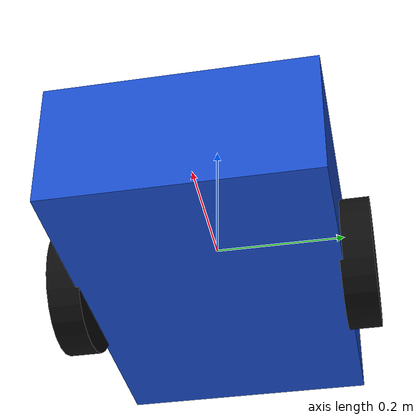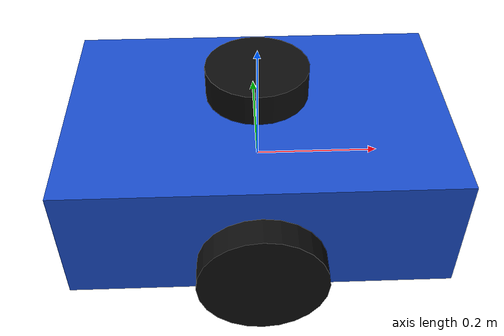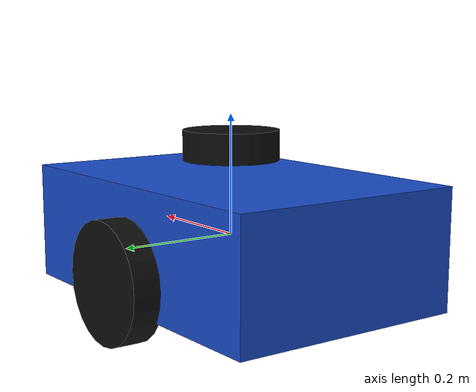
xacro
<?xml version="1.0"?>

<robot xmlns:xacro="http://www.ros.org/wiki/xacro"
       name="amr_robot">

  <!-- Robot dimensions -->

  <xacro:property name="base_length" value="0.6"/>
  <xacro:property name="base_width" value="0.4"/>
  <xacro:property name="base_height" value="0.2"/>

  <xacro:property name="wheel_radius" value="0.1"/>
  <xacro:property name="wheel_width" value="0.05"/>

  <xacro:property name="wheel_y" value="0.22"/>
  <xacro:property name="wheel_z" value="-0.05"/>

  <!-- Base -->

  <link name="base_link">

    <visual>
      <geometry>
        <box size="${base_length} ${base_width} ${base_height}"/>
      </geometry>

      <material name="blue">
        <color rgba="0.1 0.3 0.8 1.0"/>
      </material>
    </visual>

    <collision>
      <geometry>
        <box size="${base_length} ${base_width} ${base_height}"/>
      </geometry>
    </collision>

    <inertial>
      <mass value="10.0"/>
      <origin xyz="0 0 0"/>
      <inertia
        ixx="0.5"
        ixy="0.0"
        ixz="0.0"
        iyy="0.5"
        iyz="0.0"
        izz="0.5"/>
    </inertial>

  </link>

  <!-- Left wheel -->

  <link name="left_wheel">

    <visual>
      <geometry>
        <cylinder
          radius="${wheel_radius}"
          length="${wheel_width}"/>
      </geometry>

      <material name="black">
        <color rgba="0.05 0.05 0.05 1.0"/>
      </material>
    </visual>

    <collision>
      <geometry>
        <cylinder
          radius="${wheel_radius}"
          length="${wheel_width}"/>
      </geometry>
    </collision>

    <inertial>
      <mass value="1.0"/>
      <origin xyz="0 0 0"/>
      <inertia
        ixx="0.01"
        ixy="0.0"
        ixz="0.0"
        iyy="0.01"
        iyz="0.0"
        izz="0.01"/>
    </inertial>

  </link>

  <!-- Right wheel -->

  <link name="right_wheel">

    <visual>
      <geometry>
        <cylinder
          radius="${wheel_radius}"
          length="${wheel_width}"/>
      </geometry>

      <material name="black">
        <color rgba="0.05 0.05 0.05 1.0"/>
      </material>
    </visual>

    <collision>
      <geometry>
        <cylinder
          radius="${wheel_radius}"
          length="${wheel_width}"/>
      </geometry>
    </collision>

    <inertial>
      <mass value="1.0"/>
      <origin xyz="0 0 0"/>
      <inertia
        ixx="0.01"
        ixy="0.0"
        ixz="0.0"
        iyy="0.01"
        iyz="0.0"
        izz="0.01"/>
    </inertial>

  </link>

  <!-- Left wheel joint -->

  <joint name="left_wheel_joint"
         type="continuous">

    <parent link="base_link"/>
    <child link="left_wheel"/>

    <origin
      xyz="0 ${wheel_y} ${wheel_z}"
      rpy="1.5708 0 0"/>

    <axis xyz="0 0 1"/>

  </joint>

  <!-- Right wheel joint -->

  <joint name="right_wheel_joint"
         type="continuous">

    <parent link="base_link"/>
    <child link="right_wheel"/>

    <origin
      xyz="0 -${wheel_y} ${wheel_z}"
      rpy="1.5708 0 0"/>

    <axis xyz="0 0 1"/>

  </joint>

  <link name="lidar_link">

    <visual>
    <origin xyz="0 0 0" rpy="0 0 0"/>

      <geometry>
        <cylinder radius="0.08" length="0.05"/>
      </geometry>

      <material name="black">
        <color rgba="0.05 0.05 0.05 1.0"/>
      </material>
    </visual>

    <collision>
      <origin xyz="0 0 0" rpy="0 0 0"/>

      <geometry>
        <cylinder radius="0.08" length="0.05"/>
      </geometry>

    </collision>

  </link>

  <joint name="lidar_joint"
         type="fixed">

    <parent link="base_link"/>
    <child link="lidar_link"/>

    <origin
      xyz="0 0 0.15"
      rpy="0 0 0"/>
  </joint>

  <!-- LiDAR Gazebo Sensor -->

  <gazebo reference="lidar_link">

    <sensor name="lidar_sensor"
            type="gpu_lidar">

      <topic>/scan</topic>
      <gz_frame_id>lidar_link</gz_frame_id>
      <update_rate>10</update_rate>

      <update_rate>10</update_rate>

      <lidar>

        <scan>
          <horizontal>
            <samples>360</samples>
            <resolution>1</resolution>
            <min_angle>-3.14159</min_angle>
            <max_angle>3.14159</max_angle>
          </horizontal>
        </scan>

        <range>
          <min>0.12</min>
          <max>10.0</max>
          <resolution>0.01</resolution>
        </range>

      </lidar>

      <always_on>true</always_on>
      <visualize>true</visualize>

    </sensor>

  </gazebo>

  <ros2_control name="GazeboSystem" type="system">
    <hardware>
      <plugin>gz_ros2_control/GazeboSimSystem</plugin>
    </hardware>

    <joint name="left_wheel_joint">
      <command_interface name="velocity"/>
      <state_interface name="position"/>
      <state_interface name="velocity"/>
    </joint>

    <joint name="right_wheel_joint">
      <command_interface name="velocity"/>
      <state_interface name="position"/>
      <state_interface name="velocity"/>
    </joint>
  </ros2_control>

  <gazebo>
    <plugin filename="gz_ros2_control-system"
            name="gz_ros2_control::GazeboSimROS2ControlPlugin">
      <parameters>$(find amr_robot)/config/controllers.yaml</parameters>
    </plugin>
  </gazebo>

</robot>
